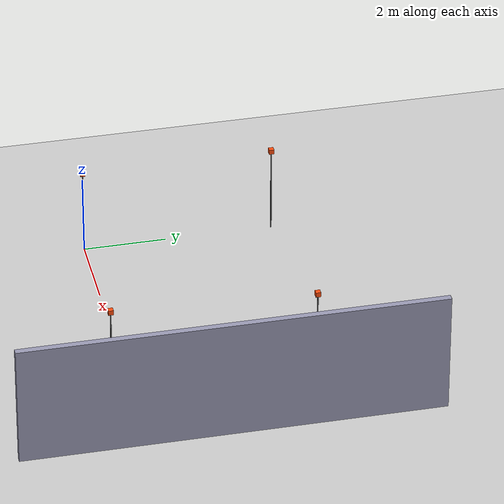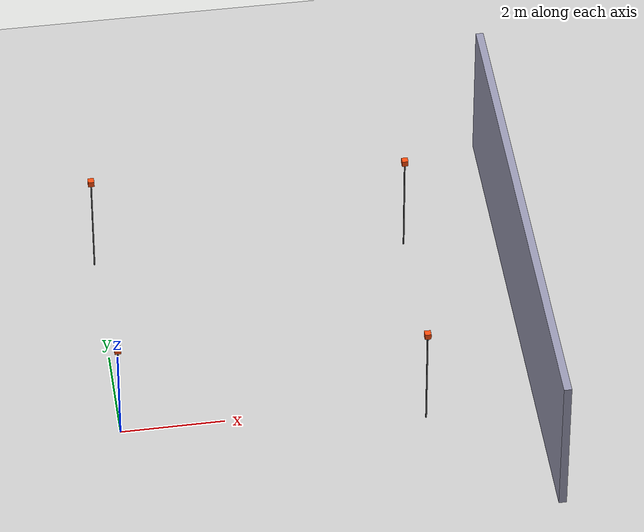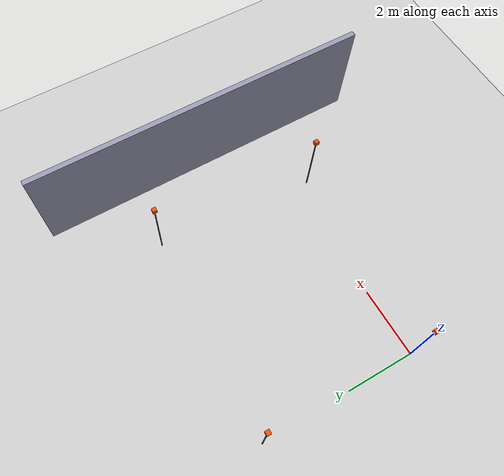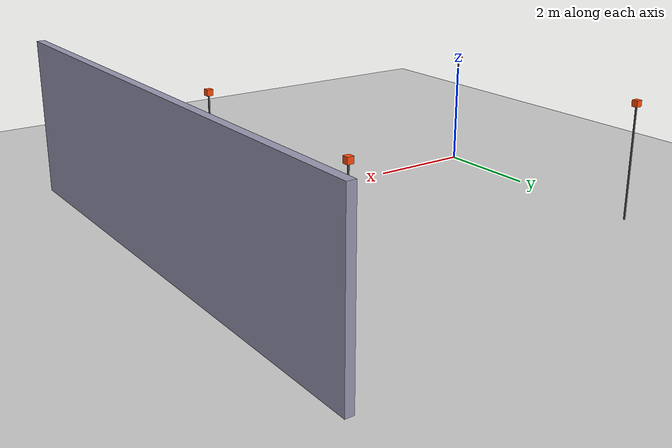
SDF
<?xml version='1.0' encoding='utf-8'?>
<sdf version="1.9">
  <world name="dronestock_uwb">
    <physics type="ode">
      <max_step_size>0.004</max_step_size>
      <real_time_factor>1.0</real_time_factor>
      <real_time_update_rate>250</real_time_update_rate>
    </physics>
    <gravity>0 0 -9.8</gravity>
    <magnetic_field>6e-06 2.3e-05 -4.2e-05</magnetic_field>
    <atmosphere type="adiabatic" />
    <scene>
      <grid>false</grid>
      <ambient>0.4 0.4 0.4 1</ambient>
      <background>0.7 0.7 0.7 1</background>
      <shadows>true</shadows>
    </scene>
    <model name="ground_plane">
      <static>true</static>
      <link name="link">
        <collision name="collision">
          <geometry>
            <plane>
              <normal>0 0 1</normal>
              <size>1 1</size>
            </plane>
          </geometry>
          <surface>
            <friction>
              <ode />
            </friction>
            <bounce />
            <contact />
          </surface>
        </collision>
        <visual name="visual">
          <geometry>
            <plane>
              <normal>0 0 1</normal>
              <size>500 500</size>
            </plane>
          </geometry>
          <material>
            <ambient>0.8 0.8 0.8 1</ambient>
            <diffuse>0.8 0.8 0.8 1</diffuse>
            <specular>0.8 0.8 0.8 1</specular>
          </material>
        </visual>
        <pose>0 0 0 0 -0 0</pose>
        <inertial>
          <pose>0 0 0 0 -0 0</pose>
          <mass>1</mass>
          <inertia>
            <ixx>1</ixx>
            <ixy>0</ixy>
            <ixz>0</ixz>
            <iyy>1</iyy>
            <iyz>0</iyz>
            <izz>1</izz>
          </inertia>
        </inertial>
        <enable_wind>false</enable_wind>
        <visual name="floor_texture_-2_-2">
          <pose>-1.0 -1.0 0.001 0 0 0</pose>
          <geometry>
            <box>
              <size>0.5 0.5 0.001</size>
            </box>
          </geometry>
          <material>
            <ambient>0.15 0.15 0.15 1</ambient>
            <diffuse>0.15 0.15 0.15 1</diffuse>
          </material>
        </visual>
        <visual name="floor_texture_-2_0">
          <pose>-1.0 0.0 0.001 0 0 0</pose>
          <geometry>
            <box>
              <size>0.5 0.5 0.001</size>
            </box>
          </geometry>
          <material>
            <ambient>0.15 0.15 0.15 1</ambient>
            <diffuse>0.15 0.15 0.15 1</diffuse>
          </material>
        </visual>
        <visual name="floor_texture_-2_2">
          <pose>-1.0 1.0 0.001 0 0 0</pose>
          <geometry>
            <box>
              <size>0.5 0.5 0.001</size>
            </box>
          </geometry>
          <material>
            <ambient>0.15 0.15 0.15 1</ambient>
            <diffuse>0.15 0.15 0.15 1</diffuse>
          </material>
        </visual>
        <visual name="floor_texture_-2_4">
          <pose>-1.0 2.0 0.001 0 0 0</pose>
          <geometry>
            <box>
              <size>0.5 0.5 0.001</size>
            </box>
          </geometry>
          <material>
            <ambient>0.15 0.15 0.15 1</ambient>
            <diffuse>0.15 0.15 0.15 1</diffuse>
          </material>
        </visual>
        <visual name="floor_texture_-2_6">
          <pose>-1.0 3.0 0.001 0 0 0</pose>
          <geometry>
            <box>
              <size>0.5 0.5 0.001</size>
            </box>
          </geometry>
          <material>
            <ambient>0.15 0.15 0.15 1</ambient>
            <diffuse>0.15 0.15 0.15 1</diffuse>
          </material>
        </visual>
        <visual name="floor_texture_-2_8">
          <pose>-1.0 4.0 0.001 0 0 0</pose>
          <geometry>
            <box>
              <size>0.5 0.5 0.001</size>
            </box>
          </geometry>
          <material>
            <ambient>0.15 0.15 0.15 1</ambient>
            <diffuse>0.15 0.15 0.15 1</diffuse>
          </material>
        </visual>
        <visual name="floor_texture_-2_10">
          <pose>-1.0 5.0 0.001 0 0 0</pose>
          <geometry>
            <box>
              <size>0.5 0.5 0.001</size>
            </box>
          </geometry>
          <material>
            <ambient>0.15 0.15 0.15 1</ambient>
            <diffuse>0.15 0.15 0.15 1</diffuse>
          </material>
        </visual>
        <visual name="floor_texture_-2_12">
          <pose>-1.0 6.0 0.001 0 0 0</pose>
          <geometry>
            <box>
              <size>0.5 0.5 0.001</size>
            </box>
          </geometry>
          <material>
            <ambient>0.15 0.15 0.15 1</ambient>
            <diffuse>0.15 0.15 0.15 1</diffuse>
          </material>
        </visual>
        <visual name="floor_texture_-1_-3">
          <pose>-0.5 -1.5 0.001 0 0 0</pose>
          <geometry>
            <box>
              <size>0.5 0.5 0.001</size>
            </box>
          </geometry>
          <material>
            <ambient>0.15 0.15 0.15 1</ambient>
            <diffuse>0.15 0.15 0.15 1</diffuse>
          </material>
        </visual>
        <visual name="floor_texture_-1_-1">
          <pose>-0.5 -0.5 0.001 0 0 0</pose>
          <geometry>
            <box>
              <size>0.5 0.5 0.001</size>
            </box>
          </geometry>
          <material>
            <ambient>0.15 0.15 0.15 1</ambient>
            <diffuse>0.15 0.15 0.15 1</diffuse>
          </material>
        </visual>
        <visual name="floor_texture_-1_1">
          <pose>-0.5 0.5 0.001 0 0 0</pose>
          <geometry>
            <box>
              <size>0.5 0.5 0.001</size>
            </box>
          </geometry>
          <material>
            <ambient>0.15 0.15 0.15 1</ambient>
            <diffuse>0.15 0.15 0.15 1</diffuse>
          </material>
        </visual>
        <visual name="floor_texture_-1_3">
          <pose>-0.5 1.5 0.001 0 0 0</pose>
          <geometry>
            <box>
              <size>0.5 0.5 0.001</size>
            </box>
          </geometry>
          <material>
            <ambient>0.15 0.15 0.15 1</ambient>
            <diffuse>0.15 0.15 0.15 1</diffuse>
          </material>
        </visual>
        <visual name="floor_texture_-1_5">
          <pose>-0.5 2.5 0.001 0 0 0</pose>
          <geometry>
            <box>
              <size>0.5 0.5 0.001</size>
            </box>
          </geometry>
          <material>
            <ambient>0.15 0.15 0.15 1</ambient>
            <diffuse>0.15 0.15 0.15 1</diffuse>
          </material>
        </visual>
        <visual name="floor_texture_-1_7">
          <pose>-0.5 3.5 0.001 0 0 0</pose>
          <geometry>
            <box>
              <size>0.5 0.5 0.001</size>
            </box>
          </geometry>
          <material>
            <ambient>0.15 0.15 0.15 1</ambient>
            <diffuse>0.15 0.15 0.15 1</diffuse>
          </material>
        </visual>
        <visual name="floor_texture_-1_9">
          <pose>-0.5 4.5 0.001 0 0 0</pose>
          <geometry>
            <box>
              <size>0.5 0.5 0.001</size>
            </box>
          </geometry>
          <material>
            <ambient>0.15 0.15 0.15 1</ambient>
            <diffuse>0.15 0.15 0.15 1</diffuse>
          </material>
        </visual>
        <visual name="floor_texture_-1_11">
          <pose>-0.5 5.5 0.001 0 0 0</pose>
          <geometry>
            <box>
              <size>0.5 0.5 0.001</size>
            </box>
          </geometry>
          <material>
            <ambient>0.15 0.15 0.15 1</ambient>
            <diffuse>0.15 0.15 0.15 1</diffuse>
          </material>
        </visual>
        <visual name="floor_texture_0_-2">
          <pose>0.0 -1.0 0.001 0 0 0</pose>
          <geometry>
            <box>
              <size>0.5 0.5 0.001</size>
            </box>
          </geometry>
          <material>
            <ambient>0.15 0.15 0.15 1</ambient>
            <diffuse>0.15 0.15 0.15 1</diffuse>
          </material>
        </visual>
        <visual name="floor_texture_0_0">
          <pose>0.0 0.0 0.001 0 0 0</pose>
          <geometry>
            <box>
              <size>0.5 0.5 0.001</size>
            </box>
          </geometry>
          <material>
            <ambient>0.15 0.15 0.15 1</ambient>
            <diffuse>0.15 0.15 0.15 1</diffuse>
          </material>
        </visual>
        <visual name="floor_texture_0_2">
          <pose>0.0 1.0 0.001 0 0 0</pose>
          <geometry>
            <box>
              <size>0.5 0.5 0.001</size>
            </box>
          </geometry>
          <material>
            <ambient>0.15 0.15 0.15 1</ambient>
            <diffuse>0.15 0.15 0.15 1</diffuse>
          </material>
        </visual>
        <visual name="floor_texture_0_4">
          <pose>0.0 2.0 0.001 0 0 0</pose>
          <geometry>
            <box>
              <size>0.5 0.5 0.001</size>
            </box>
          </geometry>
          <material>
            <ambient>0.15 0.15 0.15 1</ambient>
            <diffuse>0.15 0.15 0.15 1</diffuse>
          </material>
        </visual>
        <visual name="floor_texture_0_6">
          <pose>0.0 3.0 0.001 0 0 0</pose>
          <geometry>
            <box>
              <size>0.5 0.5 0.001</size>
            </box>
          </geometry>
          <material>
            <ambient>0.15 0.15 0.15 1</ambient>
            <diffuse>0.15 0.15 0.15 1</diffuse>
          </material>
        </visual>
        <visual name="floor_texture_0_8">
          <pose>0.0 4.0 0.001 0 0 0</pose>
          <geometry>
            <box>
              <size>0.5 0.5 0.001</size>
            </box>
          </geometry>
          <material>
            <ambient>0.15 0.15 0.15 1</ambient>
            <diffuse>0.15 0.15 0.15 1</diffuse>
          </material>
        </visual>
        <visual name="floor_texture_0_10">
          <pose>0.0 5.0 0.001 0 0 0</pose>
          <geometry>
            <box>
              <size>0.5 0.5 0.001</size>
            </box>
          </geometry>
          <material>
            <ambient>0.15 0.15 0.15 1</ambient>
            <diffuse>0.15 0.15 0.15 1</diffuse>
          </material>
        </visual>
        <visual name="floor_texture_0_12">
          <pose>0.0 6.0 0.001 0 0 0</pose>
          <geometry>
            <box>
              <size>0.5 0.5 0.001</size>
            </box>
          </geometry>
          <material>
            <ambient>0.15 0.15 0.15 1</ambient>
            <diffuse>0.15 0.15 0.15 1</diffuse>
          </material>
        </visual>
        <visual name="floor_texture_1_-3">
          <pose>0.5 -1.5 0.001 0 0 0</pose>
          <geometry>
            <box>
              <size>0.5 0.5 0.001</size>
            </box>
          </geometry>
          <material>
            <ambient>0.15 0.15 0.15 1</ambient>
            <diffuse>0.15 0.15 0.15 1</diffuse>
          </material>
        </visual>
        <visual name="floor_texture_1_-1">
          <pose>0.5 -0.5 0.001 0 0 0</pose>
          <geometry>
            <box>
              <size>0.5 0.5 0.001</size>
            </box>
          </geometry>
          <material>
            <ambient>0.15 0.15 0.15 1</ambient>
            <diffuse>0.15 0.15 0.15 1</diffuse>
          </material>
        </visual>
        <visual name="floor_texture_1_1">
          <pose>0.5 0.5 0.001 0 0 0</pose>
          <geometry>
            <box>
              <size>0.5 0.5 0.001</size>
            </box>
          </geometry>
          <material>
            <ambient>0.15 0.15 0.15 1</ambient>
            <diffuse>0.15 0.15 0.15 1</diffuse>
          </material>
        </visual>
        <visual name="floor_texture_1_3">
          <pose>0.5 1.5 0.001 0 0 0</pose>
          <geometry>
            <box>
              <size>0.5 0.5 0.001</size>
            </box>
          </geometry>
          <material>
            <ambient>0.15 0.15 0.15 1</ambient>
            <diffuse>0.15 0.15 0.15 1</diffuse>
          </material>
        </visual>
        <visual name="floor_texture_1_5">
          <pose>0.5 2.5 0.001 0 0 0</pose>
          <geometry>
            <box>
              <size>0.5 0.5 0.001</size>
            </box>
          </geometry>
          <material>
            <ambient>0.15 0.15 0.15 1</ambient>
            <diffuse>0.15 0.15 0.15 1</diffuse>
          </material>
        </visual>
        <visual name="floor_texture_1_7">
          <pose>0.5 3.5 0.001 0 0 0</pose>
          <geometry>
            <box>
              <size>0.5 0.5 0.001</size>
            </box>
          </geometry>
          <material>
            <ambient>0.15 0.15 0.15 1</ambient>
            <diffuse>0.15 0.15 0.15 1</diffuse>
          </material>
        </visual>
        <visual name="floor_texture_1_9">
          <pose>0.5 4.5 0.001 0 0 0</pose>
          <geometry>
            <box>
              <size>0.5 0.5 0.001</size>
            </box>
          </geometry>
          <material>
            <ambient>0.15 0.15 0.15 1</ambient>
            <diffuse>0.15 0.15 0.15 1</diffuse>
          </material>
        </visual>
        <visual name="floor_texture_1_11">
          <pose>0.5 5.5 0.001 0 0 0</pose>
          <geometry>
            <box>
              <size>0.5 0.5 0.001</size>
            </box>
          </geometry>
          <material>
            <ambient>0.15 0.15 0.15 1</ambient>
            <diffuse>0.15 0.15 0.15 1</diffuse>
          </material>
        </visual>
        <visual name="floor_texture_2_-2">
          <pose>1.0 -1.0 0.001 0 0 0</pose>
          <geometry>
            <box>
              <size>0.5 0.5 0.001</size>
            </box>
          </geometry>
          <material>
            <ambient>0.15 0.15 0.15 1</ambient>
            <diffuse>0.15 0.15 0.15 1</diffuse>
          </material>
        </visual>
        <visual name="floor_texture_2_0">
          <pose>1.0 0.0 0.001 0 0 0</pose>
          <geometry>
            <box>
              <size>0.5 0.5 0.001</size>
            </box>
          </geometry>
          <material>
            <ambient>0.15 0.15 0.15 1</ambient>
            <diffuse>0.15 0.15 0.15 1</diffuse>
          </material>
        </visual>
        <visual name="floor_texture_2_2">
          <pose>1.0 1.0 0.001 0 0 0</pose>
          <geometry>
            <box>
              <size>0.5 0.5 0.001</size>
            </box>
          </geometry>
          <material>
            <ambient>0.15 0.15 0.15 1</ambient>
            <diffuse>0.15 0.15 0.15 1</diffuse>
          </material>
        </visual>
        <visual name="floor_texture_2_4">
          <pose>1.0 2.0 0.001 0 0 0</pose>
          <geometry>
            <box>
              <size>0.5 0.5 0.001</size>
            </box>
          </geometry>
          <material>
            <ambient>0.15 0.15 0.15 1</ambient>
            <diffuse>0.15 0.15 0.15 1</diffuse>
          </material>
        </visual>
        <visual name="floor_texture_2_6">
          <pose>1.0 3.0 0.001 0 0 0</pose>
          <geometry>
            <box>
              <size>0.5 0.5 0.001</size>
            </box>
          </geometry>
          <material>
            <ambient>0.15 0.15 0.15 1</ambient>
            <diffuse>0.15 0.15 0.15 1</diffuse>
          </material>
        </visual>
        <visual name="floor_texture_2_8">
          <pose>1.0 4.0 0.001 0 0 0</pose>
          <geometry>
            <box>
              <size>0.5 0.5 0.001</size>
            </box>
          </geometry>
          <material>
            <ambient>0.15 0.15 0.15 1</ambient>
            <diffuse>0.15 0.15 0.15 1</diffuse>
          </material>
        </visual>
        <visual name="floor_texture_2_10">
          <pose>1.0 5.0 0.001 0 0 0</pose>
          <geometry>
            <box>
              <size>0.5 0.5 0.001</size>
            </box>
          </geometry>
          <material>
            <ambient>0.15 0.15 0.15 1</ambient>
            <diffuse>0.15 0.15 0.15 1</diffuse>
          </material>
        </visual>
        <visual name="floor_texture_2_12">
          <pose>1.0 6.0 0.001 0 0 0</pose>
          <geometry>
            <box>
              <size>0.5 0.5 0.001</size>
            </box>
          </geometry>
          <material>
            <ambient>0.15 0.15 0.15 1</ambient>
            <diffuse>0.15 0.15 0.15 1</diffuse>
          </material>
        </visual>
        <visual name="floor_texture_3_-3">
          <pose>1.5 -1.5 0.001 0 0 0</pose>
          <geometry>
            <box>
              <size>0.5 0.5 0.001</size>
            </box>
          </geometry>
          <material>
            <ambient>0.15 0.15 0.15 1</ambient>
            <diffuse>0.15 0.15 0.15 1</diffuse>
          </material>
        </visual>
        <visual name="floor_texture_3_-1">
          <pose>1.5 -0.5 0.001 0 0 0</pose>
          <geometry>
            <box>
              <size>0.5 0.5 0.001</size>
            </box>
          </geometry>
          <material>
            <ambient>0.15 0.15 0.15 1</ambient>
            <diffuse>0.15 0.15 0.15 1</diffuse>
          </material>
        </visual>
        <visual name="floor_texture_3_1">
          <pose>1.5 0.5 0.001 0 0 0</pose>
          <geometry>
            <box>
              <size>0.5 0.5 0.001</size>
            </box>
          </geometry>
          <material>
            <ambient>0.15 0.15 0.15 1</ambient>
            <diffuse>0.15 0.15 0.15 1</diffuse>
          </material>
        </visual>
        <visual name="floor_texture_3_3">
          <pose>1.5 1.5 0.001 0 0 0</pose>
          <geometry>
            <box>
              <size>0.5 0.5 0.001</size>
            </box>
          </geometry>
          <material>
            <ambient>0.15 0.15 0.15 1</ambient>
            <diffuse>0.15 0.15 0.15 1</diffuse>
          </material>
        </visual>
        <visual name="floor_texture_3_5">
          <pose>1.5 2.5 0.001 0 0 0</pose>
          <geometry>
            <box>
              <size>0.5 0.5 0.001</size>
            </box>
          </geometry>
          <material>
            <ambient>0.15 0.15 0.15 1</ambient>
            <diffuse>0.15 0.15 0.15 1</diffuse>
          </material>
        </visual>
        <visual name="floor_texture_3_7">
          <pose>1.5 3.5 0.001 0 0 0</pose>
          <geometry>
            <box>
              <size>0.5 0.5 0.001</size>
            </box>
          </geometry>
          <material>
            <ambient>0.15 0.15 0.15 1</ambient>
            <diffuse>0.15 0.15 0.15 1</diffuse>
          </material>
        </visual>
        <visual name="floor_texture_3_9">
          <pose>1.5 4.5 0.001 0 0 0</pose>
          <geometry>
            <box>
              <size>0.5 0.5 0.001</size>
            </box>
          </geometry>
          <material>
            <ambient>0.15 0.15 0.15 1</ambient>
            <diffuse>0.15 0.15 0.15 1</diffuse>
          </material>
        </visual>
        <visual name="floor_texture_3_11">
          <pose>1.5 5.5 0.001 0 0 0</pose>
          <geometry>
            <box>
              <size>0.5 0.5 0.001</size>
            </box>
          </geometry>
          <material>
            <ambient>0.15 0.15 0.15 1</ambient>
            <diffuse>0.15 0.15 0.15 1</diffuse>
          </material>
        </visual>
        <visual name="floor_texture_4_-2">
          <pose>2.0 -1.0 0.001 0 0 0</pose>
          <geometry>
            <box>
              <size>0.5 0.5 0.001</size>
            </box>
          </geometry>
          <material>
            <ambient>0.15 0.15 0.15 1</ambient>
            <diffuse>0.15 0.15 0.15 1</diffuse>
          </material>
        </visual>
        <visual name="floor_texture_4_0">
          <pose>2.0 0.0 0.001 0 0 0</pose>
          <geometry>
            <box>
              <size>0.5 0.5 0.001</size>
            </box>
          </geometry>
          <material>
            <ambient>0.15 0.15 0.15 1</ambient>
            <diffuse>0.15 0.15 0.15 1</diffuse>
          </material>
        </visual>
        <visual name="floor_texture_4_2">
          <pose>2.0 1.0 0.001 0 0 0</pose>
          <geometry>
            <box>
              <size>0.5 0.5 0.001</size>
            </box>
          </geometry>
          <material>
            <ambient>0.15 0.15 0.15 1</ambient>
            <diffuse>0.15 0.15 0.15 1</diffuse>
          </material>
        </visual>
        <visual name="floor_texture_4_4">
          <pose>2.0 2.0 0.001 0 0 0</pose>
          <geometry>
            <box>
              <size>0.5 0.5 0.001</size>
            </box>
          </geometry>
          <material>
            <ambient>0.15 0.15 0.15 1</ambient>
            <diffuse>0.15 0.15 0.15 1</diffuse>
          </material>
        </visual>
        <visual name="floor_texture_4_6">
          <pose>2.0 3.0 0.001 0 0 0</pose>
          <geometry>
            <box>
              <size>0.5 0.5 0.001</size>
            </box>
          </geometry>
          <material>
            <ambient>0.15 0.15 0.15 1</ambient>
            <diffuse>0.15 0.15 0.15 1</diffuse>
          </material>
        </visual>
        <visual name="floor_texture_4_8">
          <pose>2.0 4.0 0.001 0 0 0</pose>
          <geometry>
            <box>
              <size>0.5 0.5 0.001</size>
            </box>
          </geometry>
          <material>
            <ambient>0.15 0.15 0.15 1</ambient>
            <diffuse>0.15 0.15 0.15 1</diffuse>
          </material>
        </visual>
        <visual name="floor_texture_4_10">
          <pose>2.0 5.0 0.001 0 0 0</pose>
          <geometry>
            <box>
              <size>0.5 0.5 0.001</size>
            </box>
          </geometry>
          <material>
            <ambient>0.15 0.15 0.15 1</ambient>
            <diffuse>0.15 0.15 0.15 1</diffuse>
          </material>
        </visual>
        <visual name="floor_texture_4_12">
          <pose>2.0 6.0 0.001 0 0 0</pose>
          <geometry>
            <box>
              <size>0.5 0.5 0.001</size>
            </box>
          </geometry>
          <material>
            <ambient>0.15 0.15 0.15 1</ambient>
            <diffuse>0.15 0.15 0.15 1</diffuse>
          </material>
        </visual>
        <visual name="floor_texture_5_-3">
          <pose>2.5 -1.5 0.001 0 0 0</pose>
          <geometry>
            <box>
              <size>0.5 0.5 0.001</size>
            </box>
          </geometry>
          <material>
            <ambient>0.15 0.15 0.15 1</ambient>
            <diffuse>0.15 0.15 0.15 1</diffuse>
          </material>
        </visual>
        <visual name="floor_texture_5_-1">
          <pose>2.5 -0.5 0.001 0 0 0</pose>
          <geometry>
            <box>
              <size>0.5 0.5 0.001</size>
            </box>
          </geometry>
          <material>
            <ambient>0.15 0.15 0.15 1</ambient>
            <diffuse>0.15 0.15 0.15 1</diffuse>
          </material>
        </visual>
        <visual name="floor_texture_5_1">
          <pose>2.5 0.5 0.001 0 0 0</pose>
          <geometry>
            <box>
              <size>0.5 0.5 0.001</size>
            </box>
          </geometry>
          <material>
            <ambient>0.15 0.15 0.15 1</ambient>
            <diffuse>0.15 0.15 0.15 1</diffuse>
          </material>
        </visual>
        <visual name="floor_texture_5_3">
          <pose>2.5 1.5 0.001 0 0 0</pose>
          <geometry>
            <box>
              <size>0.5 0.5 0.001</size>
            </box>
          </geometry>
          <material>
            <ambient>0.15 0.15 0.15 1</ambient>
            <diffuse>0.15 0.15 0.15 1</diffuse>
          </material>
        </visual>
        <visual name="floor_texture_5_5">
          <pose>2.5 2.5 0.001 0 0 0</pose>
          <geometry>
            <box>
              <size>0.5 0.5 0.001</size>
            </box>
          </geometry>
          <material>
            <ambient>0.15 0.15 0.15 1</ambient>
            <diffuse>0.15 0.15 0.15 1</diffuse>
          </material>
        </visual>
        <visual name="floor_texture_5_7">
          <pose>2.5 3.5 0.001 0 0 0</pose>
          <geometry>
            <box>
              <size>0.5 0.5 0.001</size>
            </box>
          </geometry>
          <material>
            <ambient>0.15 0.15 0.15 1</ambient>
            <diffuse>0.15 0.15 0.15 1</diffuse>
          </material>
        </visual>
        <visual name="floor_texture_5_9">
          <pose>2.5 4.5 0.001 0 0 0</pose>
          <geometry>
            <box>
              <size>0.5 0.5 0.001</size>
            </box>
          </geometry>
          <material>
            <ambient>0.15 0.15 0.15 1</ambient>
            <diffuse>0.15 0.15 0.15 1</diffuse>
          </material>
        </visual>
        <visual name="floor_texture_5_11">
          <pose>2.5 5.5 0.001 0 0 0</pose>
          <geometry>
            <box>
              <size>0.5 0.5 0.001</size>
            </box>
          </geometry>
          <material>
            <ambient>0.15 0.15 0.15 1</ambient>
            <diffuse>0.15 0.15 0.15 1</diffuse>
          </material>
        </visual>
        <visual name="floor_texture_6_-2">
          <pose>3.0 -1.0 0.001 0 0 0</pose>
          <geometry>
            <box>
              <size>0.5 0.5 0.001</size>
            </box>
          </geometry>
          <material>
            <ambient>0.15 0.15 0.15 1</ambient>
            <diffuse>0.15 0.15 0.15 1</diffuse>
          </material>
        </visual>
        <visual name="floor_texture_6_0">
          <pose>3.0 0.0 0.001 0 0 0</pose>
          <geometry>
            <box>
              <size>0.5 0.5 0.001</size>
            </box>
          </geometry>
          <material>
            <ambient>0.15 0.15 0.15 1</ambient>
            <diffuse>0.15 0.15 0.15 1</diffuse>
          </material>
        </visual>
        <visual name="floor_texture_6_2">
          <pose>3.0 1.0 0.001 0 0 0</pose>
          <geometry>
            <box>
              <size>0.5 0.5 0.001</size>
            </box>
          </geometry>
          <material>
            <ambient>0.15 0.15 0.15 1</ambient>
            <diffuse>0.15 0.15 0.15 1</diffuse>
          </material>
        </visual>
        <visual name="floor_texture_6_4">
          <pose>3.0 2.0 0.001 0 0 0</pose>
          <geometry>
            <box>
              <size>0.5 0.5 0.001</size>
            </box>
          </geometry>
          <material>
            <ambient>0.15 0.15 0.15 1</ambient>
            <diffuse>0.15 0.15 0.15 1</diffuse>
          </material>
        </visual>
        <visual name="floor_texture_6_6">
          <pose>3.0 3.0 0.001 0 0 0</pose>
          <geometry>
            <box>
              <size>0.5 0.5 0.001</size>
            </box>
          </geometry>
          <material>
            <ambient>0.15 0.15 0.15 1</ambient>
            <diffuse>0.15 0.15 0.15 1</diffuse>
          </material>
        </visual>
        <visual name="floor_texture_6_8">
          <pose>3.0 4.0 0.001 0 0 0</pose>
          <geometry>
            <box>
              <size>0.5 0.5 0.001</size>
            </box>
          </geometry>
          <material>
            <ambient>0.15 0.15 0.15 1</ambient>
            <diffuse>0.15 0.15 0.15 1</diffuse>
          </material>
        </visual>
        <visual name="floor_texture_6_10">
          <pose>3.0 5.0 0.001 0 0 0</pose>
          <geometry>
            <box>
              <size>0.5 0.5 0.001</size>
            </box>
          </geometry>
          <material>
            <ambient>0.15 0.15 0.15 1</ambient>
            <diffuse>0.15 0.15 0.15 1</diffuse>
          </material>
        </visual>
        <visual name="floor_texture_6_12">
          <pose>3.0 6.0 0.001 0 0 0</pose>
          <geometry>
            <box>
              <size>0.5 0.5 0.001</size>
            </box>
          </geometry>
          <material>
            <ambient>0.15 0.15 0.15 1</ambient>
            <diffuse>0.15 0.15 0.15 1</diffuse>
          </material>
        </visual>
        <visual name="floor_texture_7_-3">
          <pose>3.5 -1.5 0.001 0 0 0</pose>
          <geometry>
            <box>
              <size>0.5 0.5 0.001</size>
            </box>
          </geometry>
          <material>
            <ambient>0.15 0.15 0.15 1</ambient>
            <diffuse>0.15 0.15 0.15 1</diffuse>
          </material>
        </visual>
        <visual name="floor_texture_7_-1">
          <pose>3.5 -0.5 0.001 0 0 0</pose>
          <geometry>
            <box>
              <size>0.5 0.5 0.001</size>
            </box>
          </geometry>
          <material>
            <ambient>0.15 0.15 0.15 1</ambient>
            <diffuse>0.15 0.15 0.15 1</diffuse>
          </material>
        </visual>
        <visual name="floor_texture_7_1">
          <pose>3.5 0.5 0.001 0 0 0</pose>
          <geometry>
            <box>
              <size>0.5 0.5 0.001</size>
            </box>
          </geometry>
          <material>
            <ambient>0.15 0.15 0.15 1</ambient>
            <diffuse>0.15 0.15 0.15 1</diffuse>
          </material>
        </visual>
        <visual name="floor_texture_7_3">
          <pose>3.5 1.5 0.001 0 0 0</pose>
          <geometry>
            <box>
              <size>0.5 0.5 0.001</size>
            </box>
          </geometry>
          <material>
            <ambient>0.15 0.15 0.15 1</ambient>
            <diffuse>0.15 0.15 0.15 1</diffuse>
          </material>
        </visual>
        <visual name="floor_texture_7_5">
          <pose>3.5 2.5 0.001 0 0 0</pose>
          <geometry>
            <box>
              <size>0.5 0.5 0.001</size>
            </box>
          </geometry>
          <material>
            <ambient>0.15 0.15 0.15 1</ambient>
            <diffuse>0.15 0.15 0.15 1</diffuse>
          </material>
        </visual>
        <visual name="floor_texture_7_7">
          <pose>3.5 3.5 0.001 0 0 0</pose>
          <geometry>
            <box>
              <size>0.5 0.5 0.001</size>
            </box>
          </geometry>
          <material>
            <ambient>0.15 0.15 0.15 1</ambient>
            <diffuse>0.15 0.15 0.15 1</diffuse>
          </material>
        </visual>
        <visual name="floor_texture_7_9">
          <pose>3.5 4.5 0.001 0 0 0</pose>
          <geometry>
            <box>
              <size>0.5 0.5 0.001</size>
            </box>
          </geometry>
          <material>
            <ambient>0.15 0.15 0.15 1</ambient>
            <diffuse>0.15 0.15 0.15 1</diffuse>
          </material>
        </visual>
        <visual name="floor_texture_7_11">
          <pose>3.5 5.5 0.001 0 0 0</pose>
          <geometry>
            <box>
              <size>0.5 0.5 0.001</size>
            </box>
          </geometry>
          <material>
            <ambient>0.15 0.15 0.15 1</ambient>
            <diffuse>0.15 0.15 0.15 1</diffuse>
          </material>
        </visual>
        <visual name="floor_texture_8_-2">
          <pose>4.0 -1.0 0.001 0 0 0</pose>
          <geometry>
            <box>
              <size>0.5 0.5 0.001</size>
            </box>
          </geometry>
          <material>
            <ambient>0.15 0.15 0.15 1</ambient>
            <diffuse>0.15 0.15 0.15 1</diffuse>
          </material>
        </visual>
        <visual name="floor_texture_8_0">
          <pose>4.0 0.0 0.001 0 0 0</pose>
          <geometry>
            <box>
              <size>0.5 0.5 0.001</size>
            </box>
          </geometry>
          <material>
            <ambient>0.15 0.15 0.15 1</ambient>
            <diffuse>0.15 0.15 0.15 1</diffuse>
          </material>
        </visual>
        <visual name="floor_texture_8_2">
          <pose>4.0 1.0 0.001 0 0 0</pose>
          <geometry>
            <box>
              <size>0.5 0.5 0.001</size>
            </box>
          </geometry>
          <material>
            <ambient>0.15 0.15 0.15 1</ambient>
            <diffuse>0.15 0.15 0.15 1</diffuse>
          </material>
        </visual>
        <visual name="floor_texture_8_4">
          <pose>4.0 2.0 0.001 0 0 0</pose>
          <geometry>
            <box>
              <size>0.5 0.5 0.001</size>
            </box>
          </geometry>
          <material>
            <ambient>0.15 0.15 0.15 1</ambient>
            <diffuse>0.15 0.15 0.15 1</diffuse>
          </material>
        </visual>
        <visual name="floor_texture_8_6">
          <pose>4.0 3.0 0.001 0 0 0</pose>
          <geometry>
            <box>
              <size>0.5 0.5 0.001</size>
            </box>
          </geometry>
          <material>
            <ambient>0.15 0.15 0.15 1</ambient>
            <diffuse>0.15 0.15 0.15 1</diffuse>
          </material>
        </visual>
        <visual name="floor_texture_8_8">
          <pose>4.0 4.0 0.001 0 0 0</pose>
          <geometry>
            <box>
              <size>0.5 0.5 0.001</size>
            </box>
          </geometry>
          <material>
            <ambient>0.15 0.15 0.15 1</ambient>
            <diffuse>0.15 0.15 0.15 1</diffuse>
          </material>
        </visual>
        <visual name="floor_texture_8_10">
          <pose>4.0 5.0 0.001 0 0 0</pose>
          <geometry>
            <box>
              <size>0.5 0.5 0.001</size>
            </box>
          </geometry>
          <material>
            <ambient>0.15 0.15 0.15 1</ambient>
            <diffuse>0.15 0.15 0.15 1</diffuse>
          </material>
        </visual>
        <visual name="floor_texture_8_12">
          <pose>4.0 6.0 0.001 0 0 0</pose>
          <geometry>
            <box>
              <size>0.5 0.5 0.001</size>
            </box>
          </geometry>
          <material>
            <ambient>0.15 0.15 0.15 1</ambient>
            <diffuse>0.15 0.15 0.15 1</diffuse>
          </material>
        </visual>
        <visual name="floor_texture_9_-3">
          <pose>4.5 -1.5 0.001 0 0 0</pose>
          <geometry>
            <box>
              <size>0.5 0.5 0.001</size>
            </box>
          </geometry>
          <material>
            <ambient>0.15 0.15 0.15 1</ambient>
            <diffuse>0.15 0.15 0.15 1</diffuse>
          </material>
        </visual>
        <visual name="floor_texture_9_-1">
          <pose>4.5 -0.5 0.001 0 0 0</pose>
          <geometry>
            <box>
              <size>0.5 0.5 0.001</size>
            </box>
          </geometry>
          <material>
            <ambient>0.15 0.15 0.15 1</ambient>
            <diffuse>0.15 0.15 0.15 1</diffuse>
          </material>
        </visual>
        <visual name="floor_texture_9_1">
          <pose>4.5 0.5 0.001 0 0 0</pose>
          <geometry>
            <box>
              <size>0.5 0.5 0.001</size>
            </box>
          </geometry>
          <material>
            <ambient>0.15 0.15 0.15 1</ambient>
            <diffuse>0.15 0.15 0.15 1</diffuse>
          </material>
        </visual>
        <visual name="floor_texture_9_3">
          <pose>4.5 1.5 0.001 0 0 0</pose>
          <geometry>
            <box>
              <size>0.5 0.5 0.001</size>
            </box>
          </geometry>
          <material>
            <ambient>0.15 0.15 0.15 1</ambient>
            <diffuse>0.15 0.15 0.15 1</diffuse>
          </material>
        </visual>
        <visual name="floor_texture_9_5">
          <pose>4.5 2.5 0.001 0 0 0</pose>
          <geometry>
            <box>
              <size>0.5 0.5 0.001</size>
            </box>
          </geometry>
          <material>
            <ambient>0.15 0.15 0.15 1</ambient>
            <diffuse>0.15 0.15 0.15 1</diffuse>
          </material>
        </visual>
        <visual name="floor_texture_9_7">
          <pose>4.5 3.5 0.001 0 0 0</pose>
          <geometry>
            <box>
              <size>0.5 0.5 0.001</size>
            </box>
          </geometry>
          <material>
            <ambient>0.15 0.15 0.15 1</ambient>
            <diffuse>0.15 0.15 0.15 1</diffuse>
          </material>
        </visual>
        <visual name="floor_texture_9_9">
          <pose>4.5 4.5 0.001 0 0 0</pose>
          <geometry>
            <box>
              <size>0.5 0.5 0.001</size>
            </box>
          </geometry>
          <material>
            <ambient>0.15 0.15 0.15 1</ambient>
            <diffuse>0.15 0.15 0.15 1</diffuse>
          </material>
        </visual>
        <visual name="floor_texture_9_11">
          <pose>4.5 5.5 0.001 0 0 0</pose>
          <geometry>
            <box>
              <size>0.5 0.5 0.001</size>
            </box>
          </geometry>
          <material>
            <ambient>0.15 0.15 0.15 1</ambient>
            <diffuse>0.15 0.15 0.15 1</diffuse>
          </material>
        </visual>
        <visual name="floor_texture_10_-2">
          <pose>5.0 -1.0 0.001 0 0 0</pose>
          <geometry>
            <box>
              <size>0.5 0.5 0.001</size>
            </box>
          </geometry>
          <material>
            <ambient>0.15 0.15 0.15 1</ambient>
            <diffuse>0.15 0.15 0.15 1</diffuse>
          </material>
        </visual>
        <visual name="floor_texture_10_0">
          <pose>5.0 0.0 0.001 0 0 0</pose>
          <geometry>
            <box>
              <size>0.5 0.5 0.001</size>
            </box>
          </geometry>
          <material>
            <ambient>0.15 0.15 0.15 1</ambient>
            <diffuse>0.15 0.15 0.15 1</diffuse>
          </material>
        </visual>
        <visual name="floor_texture_10_2">
          <pose>5.0 1.0 0.001 0 0 0</pose>
          <geometry>
            <box>
              <size>0.5 0.5 0.001</size>
            </box>
          </geometry>
          <material>
            <ambient>0.15 0.15 0.15 1</ambient>
            <diffuse>0.15 0.15 0.15 1</diffuse>
          </material>
        </visual>
        <visual name="floor_texture_10_4">
          <pose>5.0 2.0 0.001 0 0 0</pose>
          <geometry>
            <box>
              <size>0.5 0.5 0.001</size>
            </box>
          </geometry>
          <material>
            <ambient>0.15 0.15 0.15 1</ambient>
            <diffuse>0.15 0.15 0.15 1</diffuse>
          </material>
        </visual>
        <visual name="floor_texture_10_6">
          <pose>5.0 3.0 0.001 0 0 0</pose>
          <geometry>
            <box>
              <size>0.5 0.5 0.001</size>
            </box>
          </geometry>
          <material>
            <ambient>0.15 0.15 0.15 1</ambient>
            <diffuse>0.15 0.15 0.15 1</diffuse>
          </material>
        </visual>
        <visual name="floor_texture_10_8">
          <pose>5.0 4.0 0.001 0 0 0</pose>
          <geometry>
            <box>
              <size>0.5 0.5 0.001</size>
            </box>
          </geometry>
          <material>
            <ambient>0.15 0.15 0.15 1</ambient>
            <diffuse>0.15 0.15 0.15 1</diffuse>
          </material>
        </visual>
        <visual name="floor_texture_10_10">
          <pose>5.0 5.0 0.001 0 0 0</pose>
          <geometry>
            <box>
              <size>0.5 0.5 0.001</size>
            </box>
          </geometry>
          <material>
            <ambient>0.15 0.15 0.15 1</ambient>
            <diffuse>0.15 0.15 0.15 1</diffuse>
          </material>
        </visual>
        <visual name="floor_texture_10_12">
          <pose>5.0 6.0 0.001 0 0 0</pose>
          <geometry>
            <box>
              <size>0.5 0.5 0.001</size>
            </box>
          </geometry>
          <material>
            <ambient>0.15 0.15 0.15 1</ambient>
            <diffuse>0.15 0.15 0.15 1</diffuse>
          </material>
        </visual>
        <visual name="floor_texture_11_-3">
          <pose>5.5 -1.5 0.001 0 0 0</pose>
          <geometry>
            <box>
              <size>0.5 0.5 0.001</size>
            </box>
          </geometry>
          <material>
            <ambient>0.15 0.15 0.15 1</ambient>
            <diffuse>0.15 0.15 0.15 1</diffuse>
          </material>
        </visual>
        <visual name="floor_texture_11_-1">
          <pose>5.5 -0.5 0.001 0 0 0</pose>
          <geometry>
            <box>
              <size>0.5 0.5 0.001</size>
            </box>
          </geometry>
          <material>
            <ambient>0.15 0.15 0.15 1</ambient>
            <diffuse>0.15 0.15 0.15 1</diffuse>
          </material>
        </visual>
        <visual name="floor_texture_11_1">
          <pose>5.5 0.5 0.001 0 0 0</pose>
          <geometry>
            <box>
              <size>0.5 0.5 0.001</size>
            </box>
          </geometry>
          <material>
            <ambient>0.15 0.15 0.15 1</ambient>
            <diffuse>0.15 0.15 0.15 1</diffuse>
          </material>
        </visual>
        <visual name="floor_texture_11_3">
          <pose>5.5 1.5 0.001 0 0 0</pose>
          <geometry>
            <box>
              <size>0.5 0.5 0.001</size>
            </box>
          </geometry>
          <material>
            <ambient>0.15 0.15 0.15 1</ambient>
            <diffuse>0.15 0.15 0.15 1</diffuse>
          </material>
        </visual>
        <visual name="floor_texture_11_5">
          <pose>5.5 2.5 0.001 0 0 0</pose>
          <geometry>
            <box>
              <size>0.5 0.5 0.001</size>
            </box>
          </geometry>
          <material>
            <ambient>0.15 0.15 0.15 1</ambient>
            <diffuse>0.15 0.15 0.15 1</diffuse>
          </material>
        </visual>
        <visual name="floor_texture_11_7">
          <pose>5.5 3.5 0.001 0 0 0</pose>
          <geometry>
            <box>
              <size>0.5 0.5 0.001</size>
            </box>
          </geometry>
          <material>
            <ambient>0.15 0.15 0.15 1</ambient>
            <diffuse>0.15 0.15 0.15 1</diffuse>
          </material>
        </visual>
        <visual name="floor_texture_11_9">
          <pose>5.5 4.5 0.001 0 0 0</pose>
          <geometry>
            <box>
              <size>0.5 0.5 0.001</size>
            </box>
          </geometry>
          <material>
            <ambient>0.15 0.15 0.15 1</ambient>
            <diffuse>0.15 0.15 0.15 1</diffuse>
          </material>
        </visual>
        <visual name="floor_texture_11_11">
          <pose>5.5 5.5 0.001 0 0 0</pose>
          <geometry>
            <box>
              <size>0.5 0.5 0.001</size>
            </box>
          </geometry>
          <material>
            <ambient>0.15 0.15 0.15 1</ambient>
            <diffuse>0.15 0.15 0.15 1</diffuse>
          </material>
        </visual>
        <visual name="floor_texture_12_-2">
          <pose>6.0 -1.0 0.001 0 0 0</pose>
          <geometry>
            <box>
              <size>0.5 0.5 0.001</size>
            </box>
          </geometry>
          <material>
            <ambient>0.15 0.15 0.15 1</ambient>
            <diffuse>0.15 0.15 0.15 1</diffuse>
          </material>
        </visual>
        <visual name="floor_texture_12_0">
          <pose>6.0 0.0 0.001 0 0 0</pose>
          <geometry>
            <box>
              <size>0.5 0.5 0.001</size>
            </box>
          </geometry>
          <material>
            <ambient>0.15 0.15 0.15 1</ambient>
            <diffuse>0.15 0.15 0.15 1</diffuse>
          </material>
        </visual>
        <visual name="floor_texture_12_2">
          <pose>6.0 1.0 0.001 0 0 0</pose>
          <geometry>
            <box>
              <size>0.5 0.5 0.001</size>
            </box>
          </geometry>
          <material>
            <ambient>0.15 0.15 0.15 1</ambient>
            <diffuse>0.15 0.15 0.15 1</diffuse>
          </material>
        </visual>
        <visual name="floor_texture_12_4">
          <pose>6.0 2.0 0.001 0 0 0</pose>
          <geometry>
            <box>
              <size>0.5 0.5 0.001</size>
            </box>
          </geometry>
          <material>
            <ambient>0.15 0.15 0.15 1</ambient>
            <diffuse>0.15 0.15 0.15 1</diffuse>
          </material>
        </visual>
        <visual name="floor_texture_12_6">
          <pose>6.0 3.0 0.001 0 0 0</pose>
          <geometry>
            <box>
              <size>0.5 0.5 0.001</size>
            </box>
          </geometry>
          <material>
            <ambient>0.15 0.15 0.15 1</ambient>
            <diffuse>0.15 0.15 0.15 1</diffuse>
          </material>
        </visual>
        <visual name="floor_texture_12_8">
          <pose>6.0 4.0 0.001 0 0 0</pose>
          <geometry>
            <box>
              <size>0.5 0.5 0.001</size>
            </box>
          </geometry>
          <material>
            <ambient>0.15 0.15 0.15 1</ambient>
            <diffuse>0.15 0.15 0.15 1</diffuse>
          </material>
        </visual>
        <visual name="floor_texture_12_10">
          <pose>6.0 5.0 0.001 0 0 0</pose>
          <geometry>
            <box>
              <size>0.5 0.5 0.001</size>
            </box>
          </geometry>
          <material>
            <ambient>0.15 0.15 0.15 1</ambient>
            <diffuse>0.15 0.15 0.15 1</diffuse>
          </material>
        </visual>
        <visual name="floor_texture_12_12">
          <pose>6.0 6.0 0.001 0 0 0</pose>
          <geometry>
            <box>
              <size>0.5 0.5 0.001</size>
            </box>
          </geometry>
          <material>
            <ambient>0.15 0.15 0.15 1</ambient>
            <diffuse>0.15 0.15 0.15 1</diffuse>
          </material>
        </visual>
        <visual name="floor_texture_13_-3">
          <pose>6.5 -1.5 0.001 0 0 0</pose>
          <geometry>
            <box>
              <size>0.5 0.5 0.001</size>
            </box>
          </geometry>
          <material>
            <ambient>0.15 0.15 0.15 1</ambient>
            <diffuse>0.15 0.15 0.15 1</diffuse>
          </material>
        </visual>
        <visual name="floor_texture_13_-1">
          <pose>6.5 -0.5 0.001 0 0 0</pose>
          <geometry>
            <box>
              <size>0.5 0.5 0.001</size>
            </box>
          </geometry>
          <material>
            <ambient>0.15 0.15 0.15 1</ambient>
            <diffuse>0.15 0.15 0.15 1</diffuse>
          </material>
        </visual>
        <visual name="floor_texture_13_1">
          <pose>6.5 0.5 0.001 0 0 0</pose>
          <geometry>
            <box>
              <size>0.5 0.5 0.001</size>
            </box>
          </geometry>
          <material>
            <ambient>0.15 0.15 0.15 1</ambient>
            <diffuse>0.15 0.15 0.15 1</diffuse>
          </material>
        </visual>
        <visual name="floor_texture_13_3">
          <pose>6.5 1.5 0.001 0 0 0</pose>
          <geometry>
            <box>
              <size>0.5 0.5 0.001</size>
            </box>
          </geometry>
          <material>
            <ambient>0.15 0.15 0.15 1</ambient>
            <diffuse>0.15 0.15 0.15 1</diffuse>
          </material>
        </visual>
        <visual name="floor_texture_13_5">
          <pose>6.5 2.5 0.001 0 0 0</pose>
          <geometry>
            <box>
              <size>0.5 0.5 0.001</size>
            </box>
          </geometry>
          <material>
            <ambient>0.15 0.15 0.15 1</ambient>
            <diffuse>0.15 0.15 0.15 1</diffuse>
          </material>
        </visual>
        <visual name="floor_texture_13_7">
          <pose>6.5 3.5 0.001 0 0 0</pose>
          <geometry>
            <box>
              <size>0.5 0.5 0.001</size>
            </box>
          </geometry>
          <material>
            <ambient>0.15 0.15 0.15 1</ambient>
            <diffuse>0.15 0.15 0.15 1</diffuse>
          </material>
        </visual>
        <visual name="floor_texture_13_9">
          <pose>6.5 4.5 0.001 0 0 0</pose>
          <geometry>
            <box>
              <size>0.5 0.5 0.001</size>
            </box>
          </geometry>
          <material>
            <ambient>0.15 0.15 0.15 1</ambient>
            <diffuse>0.15 0.15 0.15 1</diffuse>
          </material>
        </visual>
        <visual name="floor_texture_13_11">
          <pose>6.5 5.5 0.001 0 0 0</pose>
          <geometry>
            <box>
              <size>0.5 0.5 0.001</size>
            </box>
          </geometry>
          <material>
            <ambient>0.15 0.15 0.15 1</ambient>
            <diffuse>0.15 0.15 0.15 1</diffuse>
          </material>
        </visual>
        <visual name="floor_texture_14_-2">
          <pose>7.0 -1.0 0.001 0 0 0</pose>
          <geometry>
            <box>
              <size>0.5 0.5 0.001</size>
            </box>
          </geometry>
          <material>
            <ambient>0.15 0.15 0.15 1</ambient>
            <diffuse>0.15 0.15 0.15 1</diffuse>
          </material>
        </visual>
        <visual name="floor_texture_14_0">
          <pose>7.0 0.0 0.001 0 0 0</pose>
          <geometry>
            <box>
              <size>0.5 0.5 0.001</size>
            </box>
          </geometry>
          <material>
            <ambient>0.15 0.15 0.15 1</ambient>
            <diffuse>0.15 0.15 0.15 1</diffuse>
          </material>
        </visual>
        <visual name="floor_texture_14_2">
          <pose>7.0 1.0 0.001 0 0 0</pose>
          <geometry>
            <box>
              <size>0.5 0.5 0.001</size>
            </box>
          </geometry>
          <material>
            <ambient>0.15 0.15 0.15 1</ambient>
            <diffuse>0.15 0.15 0.15 1</diffuse>
          </material>
        </visual>
        <visual name="floor_texture_14_4">
          <pose>7.0 2.0 0.001 0 0 0</pose>
          <geometry>
            <box>
              <size>0.5 0.5 0.001</size>
            </box>
          </geometry>
          <material>
            <ambient>0.15 0.15 0.15 1</ambient>
            <diffuse>0.15 0.15 0.15 1</diffuse>
          </material>
        </visual>
        <visual name="floor_texture_14_6">
          <pose>7.0 3.0 0.001 0 0 0</pose>
          <geometry>
            <box>
              <size>0.5 0.5 0.001</size>
            </box>
          </geometry>
          <material>
            <ambient>0.15 0.15 0.15 1</ambient>
            <diffuse>0.15 0.15 0.15 1</diffuse>
          </material>
        </visual>
        <visual name="floor_texture_14_8">
          <pose>7.0 4.0 0.001 0 0 0</pose>
          <geometry>
            <box>
              <size>0.5 0.5 0.001</size>
            </box>
          </geometry>
          <material>
            <ambient>0.15 0.15 0.15 1</ambient>
            <diffuse>0.15 0.15 0.15 1</diffuse>
          </material>
        </visual>
        <visual name="floor_texture_14_10">
          <pose>7.0 5.0 0.001 0 0 0</pose>
          <geometry>
            <box>
              <size>0.5 0.5 0.001</size>
            </box>
          </geometry>
          <material>
            <ambient>0.15 0.15 0.15 1</ambient>
            <diffuse>0.15 0.15 0.15 1</diffuse>
          </material>
        </visual>
        <visual name="floor_texture_14_12">
          <pose>7.0 6.0 0.001 0 0 0</pose>
          <geometry>
            <box>
              <size>0.5 0.5 0.001</size>
            </box>
          </geometry>
          <material>
            <ambient>0.15 0.15 0.15 1</ambient>
            <diffuse>0.15 0.15 0.15 1</diffuse>
          </material>
        </visual>
        <visual name="floor_texture_15_-3">
          <pose>7.5 -1.5 0.001 0 0 0</pose>
          <geometry>
            <box>
              <size>0.5 0.5 0.001</size>
            </box>
          </geometry>
          <material>
            <ambient>0.15 0.15 0.15 1</ambient>
            <diffuse>0.15 0.15 0.15 1</diffuse>
          </material>
        </visual>
        <visual name="floor_texture_15_-1">
          <pose>7.5 -0.5 0.001 0 0 0</pose>
          <geometry>
            <box>
              <size>0.5 0.5 0.001</size>
            </box>
          </geometry>
          <material>
            <ambient>0.15 0.15 0.15 1</ambient>
            <diffuse>0.15 0.15 0.15 1</diffuse>
          </material>
        </visual>
        <visual name="floor_texture_15_1">
          <pose>7.5 0.5 0.001 0 0 0</pose>
          <geometry>
            <box>
              <size>0.5 0.5 0.001</size>
            </box>
          </geometry>
          <material>
            <ambient>0.15 0.15 0.15 1</ambient>
            <diffuse>0.15 0.15 0.15 1</diffuse>
          </material>
        </visual>
        <visual name="floor_texture_15_3">
          <pose>7.5 1.5 0.001 0 0 0</pose>
          <geometry>
            <box>
              <size>0.5 0.5 0.001</size>
            </box>
          </geometry>
          <material>
            <ambient>0.15 0.15 0.15 1</ambient>
            <diffuse>0.15 0.15 0.15 1</diffuse>
          </material>
        </visual>
        <visual name="floor_texture_15_5">
          <pose>7.5 2.5 0.001 0 0 0</pose>
          <geometry>
            <box>
              <size>0.5 0.5 0.001</size>
            </box>
          </geometry>
          <material>
            <ambient>0.15 0.15 0.15 1</ambient>
            <diffuse>0.15 0.15 0.15 1</diffuse>
          </material>
        </visual>
        <visual name="floor_texture_15_7">
          <pose>7.5 3.5 0.001 0 0 0</pose>
          <geometry>
            <box>
              <size>0.5 0.5 0.001</size>
            </box>
          </geometry>
          <material>
            <ambient>0.15 0.15 0.15 1</ambient>
            <diffuse>0.15 0.15 0.15 1</diffuse>
          </material>
        </visual>
        <visual name="floor_texture_15_9">
          <pose>7.5 4.5 0.001 0 0 0</pose>
          <geometry>
            <box>
              <size>0.5 0.5 0.001</size>
            </box>
          </geometry>
          <material>
            <ambient>0.15 0.15 0.15 1</ambient>
            <diffuse>0.15 0.15 0.15 1</diffuse>
          </material>
        </visual>
        <visual name="floor_texture_15_11">
          <pose>7.5 5.5 0.001 0 0 0</pose>
          <geometry>
            <box>
              <size>0.5 0.5 0.001</size>
            </box>
          </geometry>
          <material>
            <ambient>0.15 0.15 0.15 1</ambient>
            <diffuse>0.15 0.15 0.15 1</diffuse>
          </material>
        </visual>
      </link>
      <pose>0 0 0 0 -0 0</pose>
      <self_collide>false</self_collide>
    </model>
    <light name="sunUTC" type="directional">
      <pose>0 0 500 0 -0 0</pose>
      <cast_shadows>true</cast_shadows>
      <intensity>1</intensity>
      <direction>0.001 0.625 -0.78</direction>
      <diffuse>0.904 0.904 0.904 1</diffuse>
      <specular>0.271 0.271 0.271 1</specular>
      <attenuation>
        <range>2000</range>
        <linear>0</linear>
        <constant>1</constant>
        <quadratic>0</quadratic>
      </attenuation>
      <spot>
        <inner_angle>0</inner_angle>
        <outer_angle>0</outer_angle>
        <falloff>0</falloff>
      </spot>
    </light>
    <spherical_coordinates>
      <surface_model>EARTH_WGS84</surface_model>
      <world_frame_orientation>ENU</world_frame_orientation>
      <latitude_deg>47.397971057728974</latitude_deg>
      <longitude_deg> 8.546163739800146</longitude_deg>
      <elevation>0</elevation>
    </spherical_coordinates>
    <plugin filename="gz-sim-physics-system" name="gz::sim::systems::Physics" />
    <plugin filename="gz-sim-user-commands-system" name="gz::sim::systems::UserCommands" />
    <plugin filename="gz-sim-scene-broadcaster-system" name="gz::sim::systems::SceneBroadcaster" />
    <plugin filename="gz-sim-contact-system" name="gz::sim::systems::Contact" />
    <plugin filename="gz-sim-imu-system" name="gz::sim::systems::Imu" />
    <plugin filename="gz-sim-air-pressure-system" name="gz::sim::systems::AirPressure" />
    <plugin filename="gz-sim-air-speed-system" name="gz::sim::systems::AirSpeed" />
    <plugin filename="gz-sim-apply-link-wrench-system" name="gz::sim::systems::ApplyLinkWrench" />
    <plugin filename="gz-sim-navsat-system" name="gz::sim::systems::NavSat" />
    <plugin filename="gz-sim-magnetometer-system" name="gz::sim::systems::Magnetometer" />
    <plugin filename="gz-sim-sensors-system" name="gz::sim::systems::Sensors">
      <render_engine>ogre2</render_engine>
    </plugin>
    <plugin filename="libOpticalFlowSystem.so" name="custom::OpticalFlowSystem" />
    <model name="uwb_A1">
      <static>true</static>
      <pose>0.0 0.0 2.2 0 0 0</pose>
      <link name="anchor">
        <visual name="A1">
          <pose>0 0 0 0 0 0</pose>
          <geometry>
            <box>
              <size>0.12 0.12 0.12</size>
            </box>
          </geometry>
          <material>
            <ambient>1 0.3 0.05 1</ambient>
            <diffuse>1 0.3 0.05 1</diffuse>
          </material>
        </visual>
        <visual name="support">
          <pose>0 0 -1.1 0 0 0</pose>
          <geometry>
            <box>
              <size>0.025 0.025 2.2</size>
            </box>
          </geometry>
          <material>
            <ambient>0.35 0.35 0.35 1</ambient>
            <diffuse>0.35 0.35 0.35 1</diffuse>
          </material>
        </visual>
      </link>
    </model>
    <model name="uwb_A2">
      <static>true</static>
      <pose>5.8102027071690925 -0.43032700908323007 2.2 0 0 0</pose>
      <link name="anchor">
        <visual name="A2">
          <pose>0 0 0 0 0 0</pose>
          <geometry>
            <box>
              <size>0.12 0.12 0.12</size>
            </box>
          </geometry>
          <material>
            <ambient>1 0.3 0.05 1</ambient>
            <diffuse>1 0.3 0.05 1</diffuse>
          </material>
        </visual>
        <visual name="support">
          <pose>0 0 -1.1 0 0 0</pose>
          <geometry>
            <box>
              <size>0.025 0.025 2.2</size>
            </box>
          </geometry>
          <material>
            <ambient>0.35 0.35 0.35 1</ambient>
            <diffuse>0.35 0.35 0.35 1</diffuse>
          </material>
        </visual>
      </link>
    </model>
    <model name="uwb_A3">
      <static>true</static>
      <pose>0.0 4.63 2.2 0 0 0</pose>
      <link name="anchor">
        <visual name="A3">
          <pose>0 0 0 0 0 0</pose>
          <geometry>
            <box>
              <size>0.12 0.12 0.12</size>
            </box>
          </geometry>
          <material>
            <ambient>1 0.3 0.05 1</ambient>
            <diffuse>1 0.3 0.05 1</diffuse>
          </material>
        </visual>
        <visual name="support">
          <pose>0 0 -1.1 0 0 0</pose>
          <geometry>
            <box>
              <size>0.025 0.025 2.2</size>
            </box>
          </geometry>
          <material>
            <ambient>0.35 0.35 0.35 1</ambient>
            <diffuse>0.35 0.35 0.35 1</diffuse>
          </material>
        </visual>
      </link>
    </model>
    <model name="uwb_A4">
      <static>true</static>
      <pose>6.110227024200994 4.357349538815547 2.2 0 0 0</pose>
      <link name="anchor">
        <visual name="A4">
          <pose>0 0 0 0 0 0</pose>
          <geometry>
            <box>
              <size>0.12 0.12 0.12</size>
            </box>
          </geometry>
          <material>
            <ambient>1 0.3 0.05 1</ambient>
            <diffuse>1 0.3 0.05 1</diffuse>
          </material>
        </visual>
        <visual name="support">
          <pose>0 0 -1.1 0 0 0</pose>
          <geometry>
            <box>
              <size>0.025 0.025 2.2</size>
            </box>
          </geometry>
          <material>
            <ambient>0.35 0.35 0.35 1</ambient>
            <diffuse>0.35 0.35 0.35 1</diffuse>
          </material>
        </visual>
      </link>
    </model>
    <model name="test_wall">
      <static>true</static>
      <pose>8.0 2.0 1.5 0.0 0.0 0.0</pose>
      <link name="obstacle">
        <visual name="wall">
          <pose>0 0 0 0 0 0</pose>
          <geometry>
            <box>
              <size>0.15 10.0 3.0</size>
            </box>
          </geometry>
          <material>
            <ambient>.6 .6 .7 1</ambient>
            <diffuse>.6 .6 .7 1</diffuse>
          </material>
        </visual>
        <collision name="wall_collision">
          <geometry>
            <box>
              <size>0.15 10.0 3.0</size>
            </box>
          </geometry>
        </collision>
      </link>
    </model>
  </world>
</sdf>
